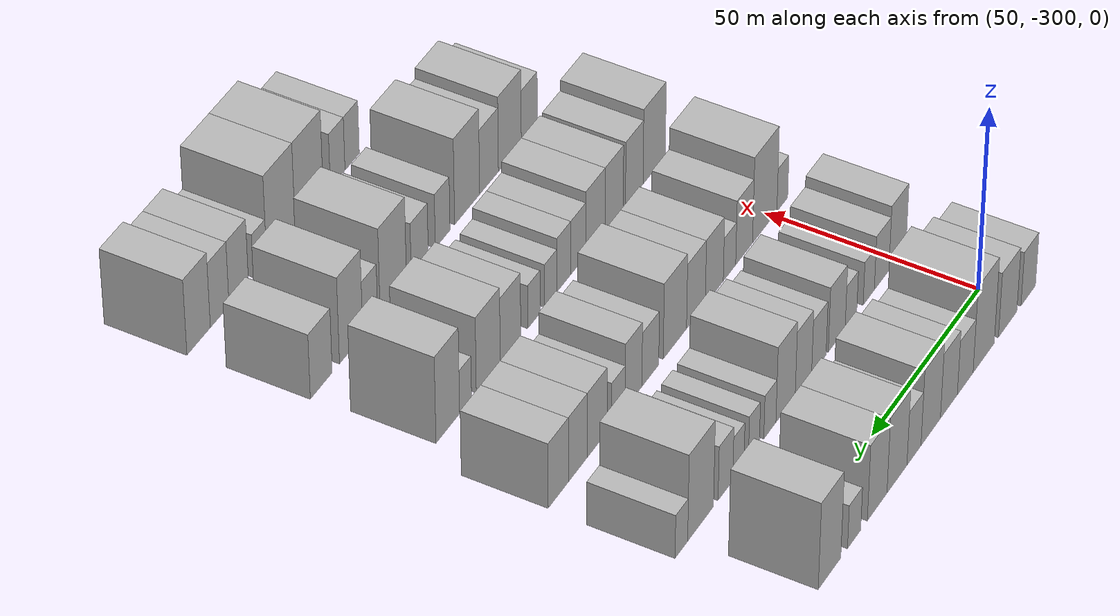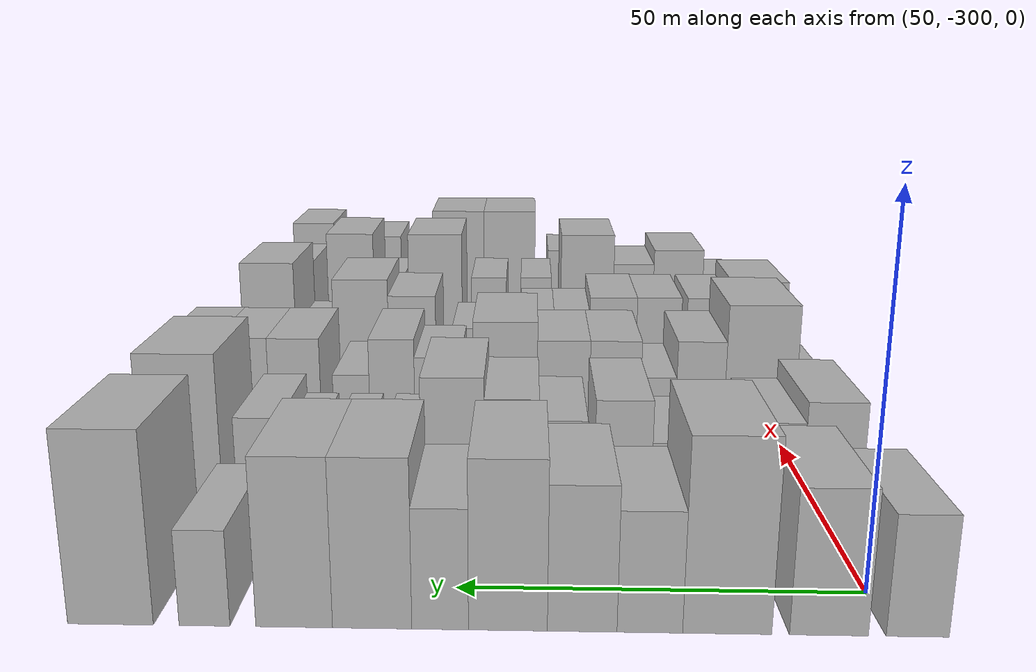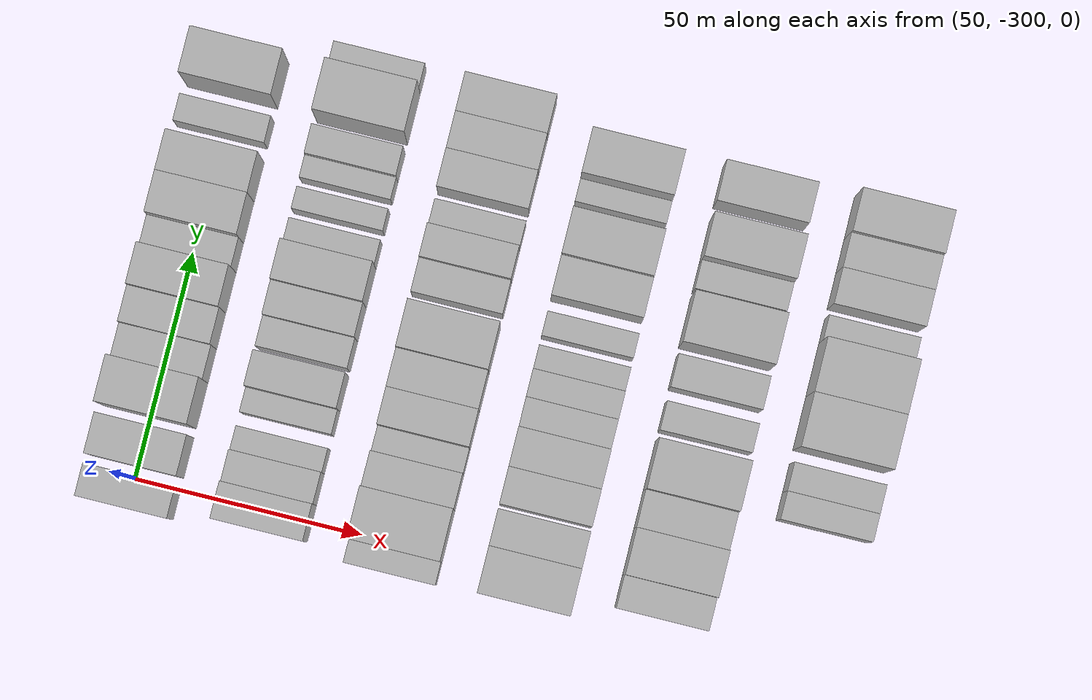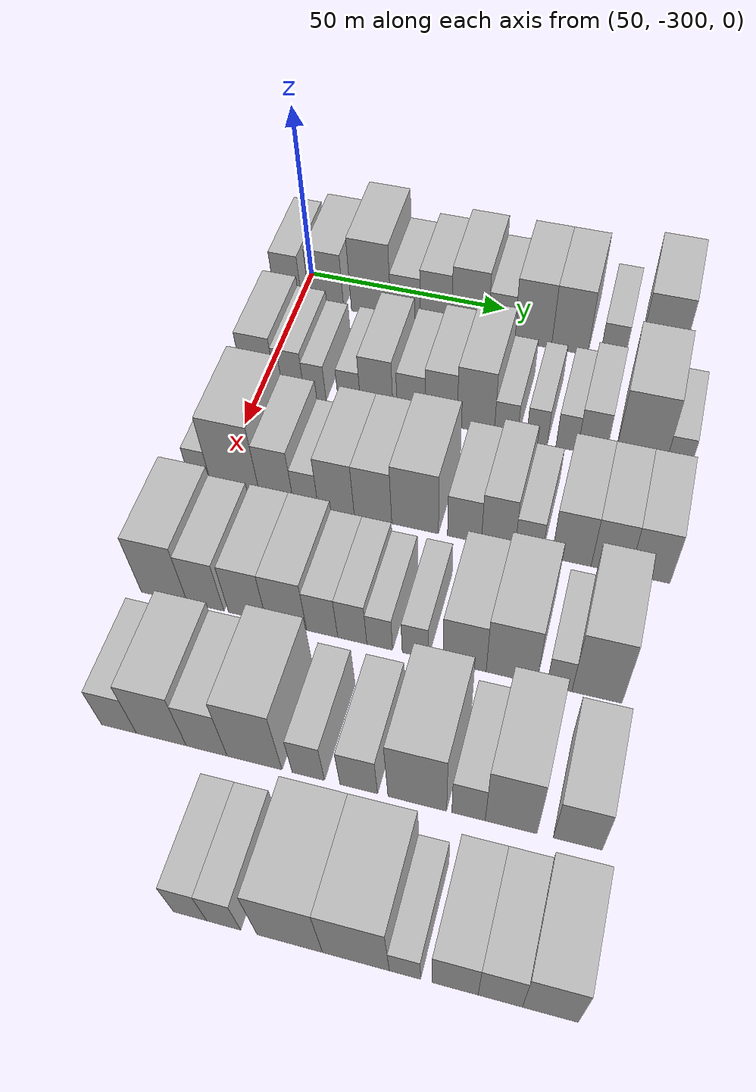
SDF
<sdf version="1.6">
 <world name="default">
  <model name="building_24">
   <static>1</static>
   <pose>50.0000 -303.0236 0 0.000000 0.000000 0.000000</pose>
   <link name="link">
    <pose>0 0 7.50 0 0 0</pose>
    <collision name="collision"><geometry><box><size>20.0000 7.0849 15.0000</size></box></geometry></collision>
    <visual name="visual">
     <cast_shadows>0</cast_shadows>
     <geometry><box><size>20.0000 7.0849 15.0000</size></box></geometry>
     <material>
      <script>
       <uri>model://HANNAS_wall/materials/scripts</uri>
       <uri>model://HANNAS_wall/materials/textures</uri>
       <name>vrc/HANNAS_wall</name>
      </script>
     </material>
    </visual>
   </link>
  </model>
  <model name="building_25">
   <static>1</static>
   <pose>50.0000 -293.0301 0 0.000000 0.000000 0.000000</pose>
   <link name="link">
    <pose>0 0 9.00 0 0 0</pose>
    <collision name="collision"><geometry><box><size>20.0000 8.9020 18.0000</size></box></geometry></collision>
    <visual name="visual">
     <cast_shadows>0</cast_shadows>
     <geometry><box><size>20.0000 8.9020 18.0000</size></box></geometry>
     <material>
      <script>
       <uri>model://HANNAS_wall/materials/scripts</uri>
       <uri>model://HANNAS_wall/materials/textures</uri>
       <name>vrc/HANNAS_wall</name>
      </script>
     </material>
    </visual>
   </link>
  </model>
  <model name="building_26">
   <static>1</static>
   <pose>50.0000 -281.5239 0 0.000000 0.000000 0.000000</pose>
   <link name="link">
    <pose>0 0 12.00 0 0 0</pose>
    <collision name="collision"><geometry><box><size>20.0000 10.1105 24.0000</size></box></geometry></collision>
    <visual name="visual">
     <cast_shadows>0</cast_shadows>
     <geometry><box><size>20.0000 10.1105 24.0000</size></box></geometry>
     <material>
      <script>
       <uri>model://HANNAS_wall/materials/scripts</uri>
       <uri>model://HANNAS_wall/materials/textures</uri>
       <name>vrc/HANNAS_wall</name>
      </script>
     </material>
    </visual>
   </link>
  </model>
  <model name="building_27">
   <static>1</static>
   <pose>50.0000 -272.7384 0 0.000000 0.000000 0.000000</pose>
   <link name="link">
    <pose>0 0 7.50 0 0 0</pose>
    <collision name="collision"><geometry><box><size>20.0000 7.4606 15.0000</size></box></geometry></collision>
    <visual name="visual">
     <cast_shadows>0</cast_shadows>
     <geometry><box><size>20.0000 7.4606 15.0000</size></box></geometry>
     <material>
      <script>
       <uri>model://HANNAS_wall/materials/scripts</uri>
       <uri>model://HANNAS_wall/materials/textures</uri>
       <name>vrc/HANNAS_wall</name>
      </script>
     </material>
    </visual>
   </link>
  </model>
  <model name="building_28">
   <static>1</static>
   <pose>50.0000 -265.0333 0 0.000000 0.000000 0.000000</pose>
   <link name="link">
    <pose>0 0 9.00 0 0 0</pose>
    <collision name="collision"><geometry><box><size>20.0000 7.9496 18.0000</size></box></geometry></collision>
    <visual name="visual">
     <cast_shadows>0</cast_shadows>
     <geometry><box><size>20.0000 7.9496 18.0000</size></box></geometry>
     <material>
      <script>
       <uri>model://HANNAS_wall/materials/scripts</uri>
       <uri>model://HANNAS_wall/materials/textures</uri>
       <name>vrc/HANNAS_wall</name>
      </script>
     </material>
    </visual>
   </link>
  </model>
  <model name="building_29">
   <static>1</static>
   <pose>50.0000 -256.5383 0 0.000000 0.000000 0.000000</pose>
   <link name="link">
    <pose>0 0 10.50 0 0 0</pose>
    <collision name="collision"><geometry><box><size>20.0000 9.0404 21.0000</size></box></geometry></collision>
    <visual name="visual">
     <cast_shadows>0</cast_shadows>
     <geometry><box><size>20.0000 9.0404 21.0000</size></box></geometry>
     <material>
      <script>
       <uri>model://HANNAS_wall/materials/scripts</uri>
       <uri>model://HANNAS_wall/materials/textures</uri>
       <name>vrc/HANNAS_wall</name>
      </script>
     </material>
    </visual>
   </link>
  </model>
  <model name="building_30">
   <static>1</static>
   <pose>50.0000 -248.7685 0 0.000000 0.000000 0.000000</pose>
   <link name="link">
    <pose>0 0 7.50 0 0 0</pose>
    <collision name="collision"><geometry><box><size>20.0000 6.4992 15.0000</size></box></geometry></collision>
    <visual name="visual">
     <cast_shadows>0</cast_shadows>
     <geometry><box><size>20.0000 6.4992 15.0000</size></box></geometry>
     <material>
      <script>
       <uri>model://HANNAS_wall/materials/scripts</uri>
       <uri>model://HANNAS_wall/materials/textures</uri>
       <name>vrc/HANNAS_wall</name>
      </script>
     </material>
    </visual>
   </link>
  </model>
  <model name="building_31">
   <static>1</static>
   <pose>50.0000 -240.9469 0 0.000000 0.000000 0.000000</pose>
   <link name="link">
    <pose>0 0 10.50 0 0 0</pose>
    <collision name="collision"><geometry><box><size>20.0000 9.1441 21.0000</size></box></geometry></collision>
    <visual name="visual">
     <cast_shadows>0</cast_shadows>
     <geometry><box><size>20.0000 9.1441 21.0000</size></box></geometry>
     <material>
      <script>
       <uri>model://HANNAS_wall/materials/scripts</uri>
       <uri>model://HANNAS_wall/materials/textures</uri>
       <name>vrc/HANNAS_wall</name>
      </script>
     </material>
    </visual>
   </link>
  </model>
  <model name="building_32">
   <static>1</static>
   <pose>50.0000 -231.9362 0 0.000000 0.000000 0.000000</pose>
   <link name="link">
    <pose>0 0 10.50 0 0 0</pose>
    <collision name="collision"><geometry><box><size>20.0000 8.8774 21.0000</size></box></geometry></collision>
    <visual name="visual">
     <cast_shadows>0</cast_shadows>
     <geometry><box><size>20.0000 8.8774 21.0000</size></box></geometry>
     <material>
      <script>
       <uri>model://HANNAS_wall/materials/scripts</uri>
       <uri>model://HANNAS_wall/materials/textures</uri>
       <name>vrc/HANNAS_wall</name>
      </script>
     </material>
    </visual>
   </link>
  </model>
  <model name="building_33">
   <static>1</static>
   <pose>50.0000 -221.5385 0 0.000000 0.000000 0.000000</pose>
   <link name="link">
    <pose>0 0 6.00 0 0 0</pose>
    <collision name="collision"><geometry><box><size>20.0000 5.9180 12.0000</size></box></geometry></collision>
    <visual name="visual">
     <cast_shadows>0</cast_shadows>
     <geometry><box><size>20.0000 5.9180 12.0000</size></box></geometry>
     <material>
      <script>
       <uri>model://HANNAS_wall/materials/scripts</uri>
       <uri>model://HANNAS_wall/materials/textures</uri>
       <name>vrc/HANNAS_wall</name>
      </script>
     </material>
    </visual>
   </link>
  </model>
  <model name="building_34">
   <static>1</static>
   <pose>50.0000 -210.5738 0 0.000000 0.000000 0.000000</pose>
   <link name="link">
    <pose>0 0 12.00 0 0 0</pose>
    <collision name="collision"><geometry><box><size>20.0000 10.0115 24.0000</size></box></geometry></collision>
    <visual name="visual">
     <cast_shadows>0</cast_shadows>
     <geometry><box><size>20.0000 10.0115 24.0000</size></box></geometry>
     <material>
      <script>
       <uri>model://HANNAS_wall/materials/scripts</uri>
       <uri>model://HANNAS_wall/materials/textures</uri>
       <name>vrc/HANNAS_wall</name>
      </script>
     </material>
    </visual>
   </link>
  </model>
  <model name="building_127">
   <static>1</static>
   <pose>79.0000 -300.2888 0 0.000000 0.000000 0.000000</pose>
   <link name="link">
    <pose>0 0 9.00 0 0 0</pose>
    <collision name="collision"><geometry><box><size>20.0000 8.0927 18.0000</size></box></geometry></collision>
    <visual name="visual">
     <cast_shadows>0</cast_shadows>
     <geometry><box><size>20.0000 8.0927 18.0000</size></box></geometry>
     <material>
      <script>
       <uri>model://HANNAS_wall/materials/scripts</uri>
       <uri>model://HANNAS_wall/materials/textures</uri>
       <name>vrc/HANNAS_wall</name>
      </script>
     </material>
    </visual>
   </link>
  </model>
  <model name="building_128">
   <static>1</static>
   <pose>79.0000 -292.7848 0 0.000000 0.000000 0.000000</pose>
   <link name="link">
    <pose>0 0 7.50 0 0 0</pose>
    <collision name="collision"><geometry><box><size>20.0000 6.9154 15.0000</size></box></geometry></collision>
    <visual name="visual">
     <cast_shadows>0</cast_shadows>
     <geometry><box><size>20.0000 6.9154 15.0000</size></box></geometry>
     <material>
      <script>
       <uri>model://HANNAS_wall/materials/scripts</uri>
       <uri>model://HANNAS_wall/materials/textures</uri>
       <name>vrc/HANNAS_wall</name>
      </script>
     </material>
    </visual>
   </link>
  </model>
  <model name="building_129">
   <static>1</static>
   <pose>79.0000 -286.7046 0 0.000000 0.000000 0.000000</pose>
   <link name="link">
    <pose>0 0 6.00 0 0 0</pose>
    <collision name="collision"><geometry><box><size>20.0000 5.2450 12.0000</size></box></geometry></collision>
    <visual name="visual">
     <cast_shadows>0</cast_shadows>
     <geometry><box><size>20.0000 5.2450 12.0000</size></box></geometry>
     <material>
      <script>
       <uri>model://HANNAS_wall/materials/scripts</uri>
       <uri>model://HANNAS_wall/materials/textures</uri>
       <name>vrc/HANNAS_wall</name>
      </script>
     </material>
    </visual>
   </link>
  </model>
  <model name="building_130">
   <static>1</static>
   <pose>79.0000 -278.3812 0 0.000000 0.000000 0.000000</pose>
   <link name="link">
    <pose>0 0 6.00 0 0 0</pose>
    <collision name="collision"><geometry><box><size>20.0000 5.4017 12.0000</size></box></geometry></collision>
    <visual name="visual">
     <cast_shadows>0</cast_shadows>
     <geometry><box><size>20.0000 5.4017 12.0000</size></box></geometry>
     <material>
      <script>
       <uri>model://HANNAS_wall/materials/scripts</uri>
       <uri>model://HANNAS_wall/materials/textures</uri>
       <name>vrc/HANNAS_wall</name>
      </script>
     </material>
    </visual>
   </link>
  </model>
  <model name="building_131">
   <static>1</static>
   <pose>79.0000 -271.7816 0 0.000000 0.000000 0.000000</pose>
   <link name="link">
    <pose>0 0 9.00 0 0 0</pose>
    <collision name="collision"><geometry><box><size>20.0000 7.7976 18.0000</size></box></geometry></collision>
    <visual name="visual">
     <cast_shadows>0</cast_shadows>
     <geometry><box><size>20.0000 7.7976 18.0000</size></box></geometry>
     <material>
      <script>
       <uri>model://HANNAS_wall/materials/scripts</uri>
       <uri>model://HANNAS_wall/materials/textures</uri>
       <name>vrc/HANNAS_wall</name>
      </script>
     </material>
    </visual>
   </link>
  </model>
  <model name="building_132">
   <static>1</static>
   <pose>79.0000 -263.5590 0 0.000000 0.000000 0.000000</pose>
   <link name="link">
    <pose>0 0 7.50 0 0 0</pose>
    <collision name="collision"><geometry><box><size>20.0000 6.6475 15.0000</size></box></geometry></collision>
    <visual name="visual">
     <cast_shadows>0</cast_shadows>
     <geometry><box><size>20.0000 6.6475 15.0000</size></box></geometry>
     <material>
      <script>
       <uri>model://HANNAS_wall/materials/scripts</uri>
       <uri>model://HANNAS_wall/materials/textures</uri>
       <name>vrc/HANNAS_wall</name>
      </script>
     </material>
    </visual>
   </link>
  </model>
  <model name="building_133">
   <static>1</static>
   <pose>79.0000 -256.4970 0 0.000000 0.000000 0.000000</pose>
   <link name="link">
    <pose>0 0 9.00 0 0 0</pose>
    <collision name="collision"><geometry><box><size>20.0000 7.4766 18.0000</size></box></geometry></collision>
    <visual name="visual">
     <cast_shadows>0</cast_shadows>
     <geometry><box><size>20.0000 7.4766 18.0000</size></box></geometry>
     <material>
      <script>
       <uri>model://HANNAS_wall/materials/scripts</uri>
       <uri>model://HANNAS_wall/materials/textures</uri>
       <name>vrc/HANNAS_wall</name>
      </script>
     </material>
    </visual>
   </link>
  </model>
  <model name="building_134">
   <static>1</static>
   <pose>79.0000 -248.4132 0 0.000000 0.000000 0.000000</pose>
   <link name="link">
    <pose>0 0 10.50 0 0 0</pose>
    <collision name="collision"><geometry><box><size>20.0000 8.6910 21.0000</size></box></geometry></collision>
    <visual name="visual">
     <cast_shadows>0</cast_shadows>
     <geometry><box><size>20.0000 8.6910 21.0000</size></box></geometry>
     <material>
      <script>
       <uri>model://HANNAS_wall/materials/scripts</uri>
       <uri>model://HANNAS_wall/materials/textures</uri>
       <name>vrc/HANNAS_wall</name>
      </script>
     </material>
    </visual>
   </link>
  </model>
  <model name="building_135">
   <static>1</static>
   <pose>79.0000 -241.3528 0 0.000000 0.000000 0.000000</pose>
   <link name="link">
    <pose>0 0 6.00 0 0 0</pose>
    <collision name="collision"><geometry><box><size>20.0000 5.4298 12.0000</size></box></geometry></collision>
    <visual name="visual">
     <cast_shadows>0</cast_shadows>
     <geometry><box><size>20.0000 5.4298 12.0000</size></box></geometry>
     <material>
      <script>
       <uri>model://HANNAS_wall/materials/scripts</uri>
       <uri>model://HANNAS_wall/materials/textures</uri>
       <name>vrc/HANNAS_wall</name>
      </script>
     </material>
    </visual>
   </link>
  </model>
  <model name="building_136">
   <static>1</static>
   <pose>79.0000 -234.2105 0 0.000000 0.000000 0.000000</pose>
   <link name="link">
    <pose>0 0 6.00 0 0 0</pose>
    <collision name="collision"><geometry><box><size>20.0000 4.8548 12.0000</size></box></geometry></collision>
    <visual name="visual">
     <cast_shadows>0</cast_shadows>
     <geometry><box><size>20.0000 4.8548 12.0000</size></box></geometry>
     <material>
      <script>
       <uri>model://HANNAS_wall/materials/scripts</uri>
       <uri>model://HANNAS_wall/materials/textures</uri>
       <name>vrc/HANNAS_wall</name>
      </script>
     </material>
    </visual>
   </link>
  </model>
  <model name="building_137">
   <static>1</static>
   <pose>79.0000 -227.3194 0 0.000000 0.000000 0.000000</pose>
   <link name="link">
    <pose>0 0 6.00 0 0 0</pose>
    <collision name="collision"><geometry><box><size>20.0000 4.9274 12.0000</size></box></geometry></collision>
    <visual name="visual">
     <cast_shadows>0</cast_shadows>
     <geometry><box><size>20.0000 4.9274 12.0000</size></box></geometry>
     <material>
      <script>
       <uri>model://HANNAS_wall/materials/scripts</uri>
       <uri>model://HANNAS_wall/materials/textures</uri>
       <name>vrc/HANNAS_wall</name>
      </script>
     </material>
    </visual>
   </link>
  </model>
  <model name="building_138">
   <static>1</static>
   <pose>79.0000 -221.6364 0 0.000000 0.000000 0.000000</pose>
   <link name="link">
    <pose>0 0 7.50 0 0 0</pose>
    <collision name="collision"><geometry><box><size>20.0000 6.4387 15.0000</size></box></geometry></collision>
    <visual name="visual">
     <cast_shadows>0</cast_shadows>
     <geometry><box><size>20.0000 6.4387 15.0000</size></box></geometry>
     <material>
      <script>
       <uri>model://HANNAS_wall/materials/scripts</uri>
       <uri>model://HANNAS_wall/materials/textures</uri>
       <name>vrc/HANNAS_wall</name>
      </script>
     </material>
    </visual>
   </link>
  </model>
  <model name="building_139">
   <static>1</static>
   <pose>79.0000 -210.8170 0 0.000000 0.000000 0.000000</pose>
   <link name="link">
    <pose>0 0 12.00 0 0 0</pose>
    <collision name="collision"><geometry><box><size>20.0000 11.2001 24.0000</size></box></geometry></collision>
    <visual name="visual">
     <cast_shadows>0</cast_shadows>
     <geometry><box><size>20.0000 11.2001 24.0000</size></box></geometry>
     <material>
      <script>
       <uri>model://HANNAS_wall/materials/scripts</uri>
       <uri>model://HANNAS_wall/materials/textures</uri>
       <name>vrc/HANNAS_wall</name>
      </script>
     </material>
    </visual>
   </link>
  </model>
  <model name="building_140">
   <static>1</static>
   <pose>79.0000 -202.5101 0 0.000000 0.000000 0.000000</pose>
   <link name="link">
    <pose>0 0 6.00 0 0 0</pose>
    <collision name="collision"><geometry><box><size>20.0000 5.4137 12.0000</size></box></geometry></collision>
    <visual name="visual">
     <cast_shadows>0</cast_shadows>
     <geometry><box><size>20.0000 5.4137 12.0000</size></box></geometry>
     <material>
      <script>
       <uri>model://HANNAS_wall/materials/scripts</uri>
       <uri>model://HANNAS_wall/materials/textures</uri>
       <name>vrc/HANNAS_wall</name>
      </script>
     </material>
    </visual>
   </link>
  </model>
  <model name="building_246">
   <static>1</static>
   <pose>108.0000 -304.0217 0 0.000000 0.000000 0.000000</pose>
   <link name="link">
    <pose>0 0 6.00 0 0 0</pose>
    <collision name="collision"><geometry><box><size>20.0000 5.0376 12.0000</size></box></geometry></collision>
    <visual name="visual">
     <cast_shadows>0</cast_shadows>
     <geometry><box><size>20.0000 5.0376 12.0000</size></box></geometry>
     <material>
      <script>
       <uri>model://HANNAS_wall/materials/scripts</uri>
       <uri>model://HANNAS_wall/materials/textures</uri>
       <name>vrc/HANNAS_wall</name>
      </script>
     </material>
    </visual>
   </link>
  </model>
  <model name="building_247">
   <static>1</static>
   <pose>108.0000 -295.8504 0 0.000000 0.000000 0.000000</pose>
   <link name="link">
    <pose>0 0 12.00 0 0 0</pose>
    <collision name="collision"><geometry><box><size>20.0000 11.3051 24.0000</size></box></geometry></collision>
    <visual name="visual">
     <cast_shadows>0</cast_shadows>
     <geometry><box><size>20.0000 11.3051 24.0000</size></box></geometry>
     <material>
      <script>
       <uri>model://HANNAS_wall/materials/scripts</uri>
       <uri>model://HANNAS_wall/materials/textures</uri>
       <name>vrc/HANNAS_wall</name>
      </script>
     </material>
    </visual>
   </link>
  </model>
  <model name="building_248">
   <static>1</static>
   <pose>108.0000 -286.3301 0 0.000000 0.000000 0.000000</pose>
   <link name="link">
    <pose>0 0 9.00 0 0 0</pose>
    <collision name="collision"><geometry><box><size>20.0000 7.7356 18.0000</size></box></geometry></collision>
    <visual name="visual">
     <cast_shadows>0</cast_shadows>
     <geometry><box><size>20.0000 7.7356 18.0000</size></box></geometry>
     <material>
      <script>
       <uri>model://HANNAS_wall/materials/scripts</uri>
       <uri>model://HANNAS_wall/materials/textures</uri>
       <name>vrc/HANNAS_wall</name>
      </script>
     </material>
    </visual>
   </link>
  </model>
  <model name="building_249">
   <static>1</static>
   <pose>108.0000 -279.6296 0 0.000000 0.000000 0.000000</pose>
   <link name="link">
    <pose>0 0 6.00 0 0 0</pose>
    <collision name="collision"><geometry><box><size>20.0000 5.6654 12.0000</size></box></geometry></collision>
    <visual name="visual">
     <cast_shadows>0</cast_shadows>
     <geometry><box><size>20.0000 5.6654 12.0000</size></box></geometry>
     <material>
      <script>
       <uri>model://HANNAS_wall/materials/scripts</uri>
       <uri>model://HANNAS_wall/materials/textures</uri>
       <name>vrc/HANNAS_wall</name>
      </script>
     </material>
    </visual>
   </link>
  </model>
  <model name="building_250">
   <static>1</static>
   <pose>108.0000 -272.7114 0 0.000000 0.000000 0.000000</pose>
   <link name="link">
    <pose>0 0 9.00 0 0 0</pose>
    <collision name="collision"><geometry><box><size>20.0000 8.1709 18.0000</size></box></geometry></collision>
    <visual name="visual">
     <cast_shadows>0</cast_shadows>
     <geometry><box><size>20.0000 8.1709 18.0000</size></box></geometry>
     <material>
      <script>
       <uri>model://HANNAS_wall/materials/scripts</uri>
       <uri>model://HANNAS_wall/materials/textures</uri>
       <name>vrc/HANNAS_wall</name>
      </script>
     </material>
    </visual>
   </link>
  </model>
  <model name="building_251">
   <static>1</static>
   <pose>108.0000 -264.4173 0 0.000000 0.000000 0.000000</pose>
   <link name="link">
    <pose>0 0 9.00 0 0 0</pose>
    <collision name="collision"><geometry><box><size>20.0000 8.4173 18.0000</size></box></geometry></collision>
    <visual name="visual">
     <cast_shadows>0</cast_shadows>
     <geometry><box><size>20.0000 8.4173 18.0000</size></box></geometry>
     <material>
      <script>
       <uri>model://HANNAS_wall/materials/scripts</uri>
       <uri>model://HANNAS_wall/materials/textures</uri>
       <name>vrc/HANNAS_wall</name>
      </script>
     </material>
    </visual>
   </link>
  </model>
  <model name="building_252">
   <static>1</static>
   <pose>108.0000 -255.0312 0 0.000000 0.000000 0.000000</pose>
   <link name="link">
    <pose>0 0 10.50 0 0 0</pose>
    <collision name="collision"><geometry><box><size>20.0000 10.3549 21.0000</size></box></geometry></collision>
    <visual name="visual">
     <cast_shadows>0</cast_shadows>
     <geometry><box><size>20.0000 10.3549 21.0000</size></box></geometry>
     <material>
      <script>
       <uri>model://HANNAS_wall/materials/scripts</uri>
       <uri>model://HANNAS_wall/materials/textures</uri>
       <name>vrc/HANNAS_wall</name>
      </script>
     </material>
    </visual>
   </link>
  </model>
  <model name="building_253">
   <static>1</static>
   <pose>108.0000 -244.1491 0 0.000000 0.000000 0.000000</pose>
   <link name="link">
    <pose>0 0 7.50 0 0 0</pose>
    <collision name="collision"><geometry><box><size>20.0000 7.4094 15.0000</size></box></geometry></collision>
    <visual name="visual">
     <cast_shadows>0</cast_shadows>
     <geometry><box><size>20.0000 7.4094 15.0000</size></box></geometry>
     <material>
      <script>
       <uri>model://HANNAS_wall/materials/scripts</uri>
       <uri>model://HANNAS_wall/materials/textures</uri>
       <name>vrc/HANNAS_wall</name>
      </script>
     </material>
    </visual>
   </link>
  </model>
  <model name="building_254">
   <static>1</static>
   <pose>108.0000 -236.7948 0 0.000000 0.000000 0.000000</pose>
   <link name="link">
    <pose>0 0 9.00 0 0 0</pose>
    <collision name="collision"><geometry><box><size>20.0000 7.2991 18.0000</size></box></geometry></collision>
    <visual name="visual">
     <cast_shadows>0</cast_shadows>
     <geometry><box><size>20.0000 7.2991 18.0000</size></box></geometry>
     <material>
      <script>
       <uri>model://HANNAS_wall/materials/scripts</uri>
       <uri>model://HANNAS_wall/materials/textures</uri>
       <name>vrc/HANNAS_wall</name>
      </script>
     </material>
    </visual>
   </link>
  </model>
  <model name="building_255">
   <static>1</static>
   <pose>108.0000 -230.1952 0 0.000000 0.000000 0.000000</pose>
   <link name="link">
    <pose>0 0 6.00 0 0 0</pose>
    <collision name="collision"><geometry><box><size>20.0000 5.9002 12.0000</size></box></geometry></collision>
    <visual name="visual">
     <cast_shadows>0</cast_shadows>
     <geometry><box><size>20.0000 5.9002 12.0000</size></box></geometry>
     <material>
      <script>
       <uri>model://HANNAS_wall/materials/scripts</uri>
       <uri>model://HANNAS_wall/materials/textures</uri>
       <name>vrc/HANNAS_wall</name>
      </script>
     </material>
    </visual>
   </link>
  </model>
  <model name="building_256">
   <static>1</static>
   <pose>108.0000 -221.0331 0 0.000000 0.000000 0.000000</pose>
   <link name="link">
    <pose>0 0 9.00 0 0 0</pose>
    <collision name="collision"><geometry><box><size>20.0000 8.4238 18.0000</size></box></geometry></collision>
    <visual name="visual">
     <cast_shadows>0</cast_shadows>
     <geometry><box><size>20.0000 8.4238 18.0000</size></box></geometry>
     <material>
      <script>
       <uri>model://HANNAS_wall/materials/scripts</uri>
       <uri>model://HANNAS_wall/materials/textures</uri>
       <name>vrc/HANNAS_wall</name>
      </script>
     </material>
    </visual>
   </link>
  </model>
  <model name="building_257">
   <static>1</static>
   <pose>108.0000 -212.7875 0 0.000000 0.000000 0.000000</pose>
   <link name="link">
    <pose>0 0 9.00 0 0 0</pose>
    <collision name="collision"><geometry><box><size>20.0000 8.0674 18.0000</size></box></geometry></collision>
    <visual name="visual">
     <cast_shadows>0</cast_shadows>
     <geometry><box><size>20.0000 8.0674 18.0000</size></box></geometry>
     <material>
      <script>
       <uri>model://HANNAS_wall/materials/scripts</uri>
       <uri>model://HANNAS_wall/materials/textures</uri>
       <name>vrc/HANNAS_wall</name>
      </script>
     </material>
    </visual>
   </link>
  </model>
  <model name="building_258">
   <static>1</static>
   <pose>108.0000 -204.4900 0 0.000000 0.000000 0.000000</pose>
   <link name="link">
    <pose>0 0 9.00 0 0 0</pose>
    <collision name="collision"><geometry><box><size>20.0000 8.5276 18.0000</size></box></geometry></collision>
    <visual name="visual">
     <cast_shadows>0</cast_shadows>
     <geometry><box><size>20.0000 8.5276 18.0000</size></box></geometry>
     <material>
      <script>
       <uri>model://HANNAS_wall/materials/scripts</uri>
       <uri>model://HANNAS_wall/materials/textures</uri>
       <name>vrc/HANNAS_wall</name>
      </script>
     </material>
    </visual>
   </link>
  </model>
  <model name="building_367">
   <static>1</static>
   <pose>137.0000 -300.8436 0 0.000000 0.000000 0.000000</pose>
   <link name="link">
    <pose>0 0 10.50 0 0 0</pose>
    <collision name="collision"><geometry><box><size>20.0000 10.1532 21.0000</size></box></geometry></collision>
    <visual name="visual">
     <cast_shadows>0</cast_shadows>
     <geometry><box><size>20.0000 10.1532 21.0000</size></box></geometry>
     <material>
      <script>
       <uri>model://HANNAS_wall/materials/scripts</uri>
       <uri>model://HANNAS_wall/materials/textures</uri>
       <name>vrc/HANNAS_wall</name>
      </script>
     </material>
    </visual>
   </link>
  </model>
  <model name="building_368">
   <static>1</static>
   <pose>137.0000 -291.7768 0 0.000000 0.000000 0.000000</pose>
   <link name="link">
    <pose>0 0 9.00 0 0 0</pose>
    <collision name="collision"><geometry><box><size>20.0000 7.9803 18.0000</size></box></geometry></collision>
    <visual name="visual">
     <cast_shadows>0</cast_shadows>
     <geometry><box><size>20.0000 7.9803 18.0000</size></box></geometry>
     <material>
      <script>
       <uri>model://HANNAS_wall/materials/scripts</uri>
       <uri>model://HANNAS_wall/materials/textures</uri>
       <name>vrc/HANNAS_wall</name>
      </script>
     </material>
    </visual>
   </link>
  </model>
  <model name="building_369">
   <static>1</static>
   <pose>137.0000 -282.7168 0 0.000000 0.000000 0.000000</pose>
   <link name="link">
    <pose>0 0 9.00 0 0 0</pose>
    <collision name="collision"><geometry><box><size>20.0000 8.1398 18.0000</size></box></geometry></collision>
    <visual name="visual">
     <cast_shadows>0</cast_shadows>
     <geometry><box><size>20.0000 8.1398 18.0000</size></box></geometry>
     <material>
      <script>
       <uri>model://HANNAS_wall/materials/scripts</uri>
       <uri>model://HANNAS_wall/materials/textures</uri>
       <name>vrc/HANNAS_wall</name>
      </script>
     </material>
    </visual>
   </link>
  </model>
  <model name="building_370">
   <static>1</static>
   <pose>137.0000 -274.3442 0 0.000000 0.000000 0.000000</pose>
   <link name="link">
    <pose>0 0 9.00 0 0 0</pose>
    <collision name="collision"><geometry><box><size>20.0000 8.6054 18.0000</size></box></geometry></collision>
    <visual name="visual">
     <cast_shadows>0</cast_shadows>
     <geometry><box><size>20.0000 8.6054 18.0000</size></box></geometry>
     <material>
      <script>
       <uri>model://HANNAS_wall/materials/scripts</uri>
       <uri>model://HANNAS_wall/materials/textures</uri>
       <name>vrc/HANNAS_wall</name>
      </script>
     </material>
    </visual>
   </link>
  </model>
  <model name="building_371">
   <static>1</static>
   <pose>137.0000 -266.7620 0 0.000000 0.000000 0.000000</pose>
   <link name="link">
    <pose>0 0 7.50 0 0 0</pose>
    <collision name="collision"><geometry><box><size>20.0000 6.5590 15.0000</size></box></geometry></collision>
    <visual name="visual">
     <cast_shadows>0</cast_shadows>
     <geometry><box><size>20.0000 6.5590 15.0000</size></box></geometry>
     <material>
      <script>
       <uri>model://HANNAS_wall/materials/scripts</uri>
       <uri>model://HANNAS_wall/materials/textures</uri>
       <name>vrc/HANNAS_wall</name>
      </script>
     </material>
    </visual>
   </link>
  </model>
  <model name="building_372">
   <static>1</static>
   <pose>137.0000 -260.4277 0 0.000000 0.000000 0.000000</pose>
   <link name="link">
    <pose>0 0 7.50 0 0 0</pose>
    <collision name="collision"><geometry><box><size>20.0000 6.1097 15.0000</size></box></geometry></collision>
    <visual name="visual">
     <cast_shadows>0</cast_shadows>
     <geometry><box><size>20.0000 6.1097 15.0000</size></box></geometry>
     <material>
      <script>
       <uri>model://HANNAS_wall/materials/scripts</uri>
       <uri>model://HANNAS_wall/materials/textures</uri>
       <name>vrc/HANNAS_wall</name>
      </script>
     </material>
    </visual>
   </link>
  </model>
  <model name="building_373">
   <static>1</static>
   <pose>137.0000 -254.6978 0 0.000000 0.000000 0.000000</pose>
   <link name="link">
    <pose>0 0 6.00 0 0 0</pose>
    <collision name="collision"><geometry><box><size>20.0000 5.3500 12.0000</size></box></geometry></collision>
    <visual name="visual">
     <cast_shadows>0</cast_shadows>
     <geometry><box><size>20.0000 5.3500 12.0000</size></box></geometry>
     <material>
      <script>
       <uri>model://HANNAS_wall/materials/scripts</uri>
       <uri>model://HANNAS_wall/materials/textures</uri>
       <name>vrc/HANNAS_wall</name>
      </script>
     </material>
    </visual>
   </link>
  </model>
  <model name="building_374">
   <static>1</static>
   <pose>137.0000 -247.3343 0 0.000000 0.000000 0.000000</pose>
   <link name="link">
    <pose>0 0 6.00 0 0 0</pose>
    <collision name="collision"><geometry><box><size>20.0000 5.3770 12.0000</size></box></geometry></collision>
    <visual name="visual">
     <cast_shadows>0</cast_shadows>
     <geometry><box><size>20.0000 5.3770 12.0000</size></box></geometry>
     <material>
      <script>
       <uri>model://HANNAS_wall/materials/scripts</uri>
       <uri>model://HANNAS_wall/materials/textures</uri>
       <name>vrc/HANNAS_wall</name>
      </script>
     </material>
    </visual>
   </link>
  </model>
  <model name="building_375">
   <static>1</static>
   <pose>137.0000 -237.2544 0 0.000000 0.000000 0.000000</pose>
   <link name="link">
    <pose>0 0 9.00 0 0 0</pose>
    <collision name="collision"><geometry><box><size>20.0000 8.7828 18.0000</size></box></geometry></collision>
    <visual name="visual">
     <cast_shadows>0</cast_shadows>
     <geometry><box><size>20.0000 8.7828 18.0000</size></box></geometry>
     <material>
      <script>
       <uri>model://HANNAS_wall/materials/scripts</uri>
       <uri>model://HANNAS_wall/materials/textures</uri>
       <name>vrc/HANNAS_wall</name>
      </script>
     </material>
    </visual>
   </link>
  </model>
  <model name="building_376">
   <static>1</static>
   <pose>137.0000 -227.7738 0 0.000000 0.000000 0.000000</pose>
   <link name="link">
    <pose>0 0 10.50 0 0 0</pose>
    <collision name="collision"><geometry><box><size>20.0000 10.1784 21.0000</size></box></geometry></collision>
    <visual name="visual">
     <cast_shadows>0</cast_shadows>
     <geometry><box><size>20.0000 10.1784 21.0000</size></box></geometry>
     <material>
      <script>
       <uri>model://HANNAS_wall/materials/scripts</uri>
       <uri>model://HANNAS_wall/materials/textures</uri>
       <name>vrc/HANNAS_wall</name>
      </script>
     </material>
    </visual>
   </link>
  </model>
  <model name="building_377">
   <static>1</static>
   <pose>137.0000 -218.1821 0 0.000000 0.000000 0.000000</pose>
   <link name="link">
    <pose>0 0 6.00 0 0 0</pose>
    <collision name="collision"><geometry><box><size>20.0000 5.0050 12.0000</size></box></geometry></collision>
    <visual name="visual">
     <cast_shadows>0</cast_shadows>
     <geometry><box><size>20.0000 5.0050 12.0000</size></box></geometry>
     <material>
      <script>
       <uri>model://HANNAS_wall/materials/scripts</uri>
       <uri>model://HANNAS_wall/materials/textures</uri>
       <name>vrc/HANNAS_wall</name>
      </script>
     </material>
    </visual>
   </link>
  </model>
  <model name="building_378">
   <static>1</static>
   <pose>137.0000 -210.7491 0 0.000000 0.000000 0.000000</pose>
   <link name="link">
    <pose>0 0 12.00 0 0 0</pose>
    <collision name="collision"><geometry><box><size>20.0000 9.8611 24.0000</size></box></geometry></collision>
    <visual name="visual">
     <cast_shadows>0</cast_shadows>
     <geometry><box><size>20.0000 9.8611 24.0000</size></box></geometry>
     <material>
      <script>
       <uri>model://HANNAS_wall/materials/scripts</uri>
       <uri>model://HANNAS_wall/materials/textures</uri>
       <name>vrc/HANNAS_wall</name>
      </script>
     </material>
    </visual>
   </link>
  </model>
  <model name="building_485">
   <static>1</static>
   <pose>166.0000 -298.3677 0 0.000000 0.000000 0.000000</pose>
   <link name="link">
    <pose>0 0 7.50 0 0 0</pose>
    <collision name="collision"><geometry><box><size>20.0000 7.1884 15.0000</size></box></geometry></collision>
    <visual name="visual">
     <cast_shadows>0</cast_shadows>
     <geometry><box><size>20.0000 7.1884 15.0000</size></box></geometry>
     <material>
      <script>
       <uri>model://HANNAS_wall/materials/scripts</uri>
       <uri>model://HANNAS_wall/materials/textures</uri>
       <name>vrc/HANNAS_wall</name>
      </script>
     </material>
    </visual>
   </link>
  </model>
  <model name="building_486">
   <static>1</static>
   <pose>166.0000 -289.7006 0 0.000000 0.000000 0.000000</pose>
   <link name="link">
    <pose>0 0 10.50 0 0 0</pose>
    <collision name="collision"><geometry><box><size>20.0000 10.1456 21.0000</size></box></geometry></collision>
    <visual name="visual">
     <cast_shadows>0</cast_shadows>
     <geometry><box><size>20.0000 10.1456 21.0000</size></box></geometry>
     <material>
      <script>
       <uri>model://HANNAS_wall/materials/scripts</uri>
       <uri>model://HANNAS_wall/materials/textures</uri>
       <name>vrc/HANNAS_wall</name>
      </script>
     </material>
    </visual>
   </link>
  </model>
  <model name="building_487">
   <static>1</static>
   <pose>166.0000 -280.5143 0 0.000000 0.000000 0.000000</pose>
   <link name="link">
    <pose>0 0 9.00 0 0 0</pose>
    <collision name="collision"><geometry><box><size>20.0000 8.2270 18.0000</size></box></geometry></collision>
    <visual name="visual">
     <cast_shadows>0</cast_shadows>
     <geometry><box><size>20.0000 8.2270 18.0000</size></box></geometry>
     <material>
      <script>
       <uri>model://HANNAS_wall/materials/scripts</uri>
       <uri>model://HANNAS_wall/materials/textures</uri>
       <name>vrc/HANNAS_wall</name>
      </script>
     </material>
    </visual>
   </link>
  </model>
  <model name="building_488">
   <static>1</static>
   <pose>166.0000 -270.9509 0 0.000000 0.000000 0.000000</pose>
   <link name="link">
    <pose>0 0 12.00 0 0 0</pose>
    <collision name="collision"><geometry><box><size>20.0000 10.8998 24.0000</size></box></geometry></collision>
    <visual name="visual">
     <cast_shadows>0</cast_shadows>
     <geometry><box><size>20.0000 10.8998 24.0000</size></box></geometry>
     <material>
      <script>
       <uri>model://HANNAS_wall/materials/scripts</uri>
       <uri>model://HANNAS_wall/materials/textures</uri>
       <name>vrc/HANNAS_wall</name>
      </script>
     </material>
    </visual>
   </link>
  </model>
  <model name="building_489">
   <static>1</static>
   <pose>166.0000 -260.3365 0 0.000000 0.000000 0.000000</pose>
   <link name="link">
    <pose>0 0 7.50 0 0 0</pose>
    <collision name="collision"><geometry><box><size>20.0000 6.3289 15.0000</size></box></geometry></collision>
    <visual name="visual">
     <cast_shadows>0</cast_shadows>
     <geometry><box><size>20.0000 6.3289 15.0000</size></box></geometry>
     <material>
      <script>
       <uri>model://HANNAS_wall/materials/scripts</uri>
       <uri>model://HANNAS_wall/materials/textures</uri>
       <name>vrc/HANNAS_wall</name>
      </script>
     </material>
    </visual>
   </link>
  </model>
  <model name="building_490">
   <static>1</static>
   <pose>166.0000 -250.5352 0 0.000000 0.000000 0.000000</pose>
   <link name="link">
    <pose>0 0 7.50 0 0 0</pose>
    <collision name="collision"><geometry><box><size>20.0000 7.2737 15.0000</size></box></geometry></collision>
    <visual name="visual">
     <cast_shadows>0</cast_shadows>
     <geometry><box><size>20.0000 7.2737 15.0000</size></box></geometry>
     <material>
      <script>
       <uri>model://HANNAS_wall/materials/scripts</uri>
       <uri>model://HANNAS_wall/materials/textures</uri>
       <name>vrc/HANNAS_wall</name>
      </script>
     </material>
    </visual>
   </link>
  </model>
  <model name="building_491">
   <static>1</static>
   <pose>166.0000 -239.3289 0 0.000000 0.000000 0.000000</pose>
   <link name="link">
    <pose>0 0 12.00 0 0 0</pose>
    <collision name="collision"><geometry><box><size>20.0000 11.1390 24.0000</size></box></geometry></collision>
    <visual name="visual">
     <cast_shadows>0</cast_shadows>
     <geometry><box><size>20.0000 11.1390 24.0000</size></box></geometry>
     <material>
      <script>
       <uri>model://HANNAS_wall/materials/scripts</uri>
       <uri>model://HANNAS_wall/materials/textures</uri>
       <name>vrc/HANNAS_wall</name>
      </script>
     </material>
    </visual>
   </link>
  </model>
  <model name="building_492">
   <static>1</static>
   <pose>166.0000 -229.6327 0 0.000000 0.000000 0.000000</pose>
   <link name="link">
    <pose>0 0 7.50 0 0 0</pose>
    <collision name="collision"><geometry><box><size>20.0000 6.2535 15.0000</size></box></geometry></collision>
    <visual name="visual">
     <cast_shadows>0</cast_shadows>
     <geometry><box><size>20.0000 6.2535 15.0000</size></box></geometry>
     <material>
      <script>
       <uri>model://HANNAS_wall/materials/scripts</uri>
       <uri>model://HANNAS_wall/materials/textures</uri>
       <name>vrc/HANNAS_wall</name>
      </script>
     </material>
    </visual>
   </link>
  </model>
  <model name="building_493">
   <static>1</static>
   <pose>166.0000 -221.6899 0 0.000000 0.000000 0.000000</pose>
   <link name="link">
    <pose>0 0 12.00 0 0 0</pose>
    <collision name="collision"><geometry><box><size>20.0000 9.6322 24.0000</size></box></geometry></collision>
    <visual name="visual">
     <cast_shadows>0</cast_shadows>
     <geometry><box><size>20.0000 9.6322 24.0000</size></box></geometry>
     <material>
      <script>
       <uri>model://HANNAS_wall/materials/scripts</uri>
       <uri>model://HANNAS_wall/materials/textures</uri>
       <name>vrc/HANNAS_wall</name>
      </script>
     </material>
    </visual>
   </link>
  </model>
  <model name="building_494">
   <static>1</static>
   <pose>166.0000 -209.4030 0 0.000000 0.000000 0.000000</pose>
   <link name="link">
    <pose>0 0 9.00 0 0 0</pose>
    <collision name="collision"><geometry><box><size>20.0000 8.9416 18.0000</size></box></geometry></collision>
    <visual name="visual">
     <cast_shadows>0</cast_shadows>
     <geometry><box><size>20.0000 8.9416 18.0000</size></box></geometry>
     <material>
      <script>
       <uri>model://HANNAS_wall/materials/scripts</uri>
       <uri>model://HANNAS_wall/materials/textures</uri>
       <name>vrc/HANNAS_wall</name>
      </script>
     </material>
    </visual>
   </link>
  </model>
  <model name="building_600">
   <static>1</static>
   <pose>195.0000 -272.5371 0 0.000000 0.000000 0.000000</pose>
   <link name="link">
    <pose>0 0 7.50 0 0 0</pose>
    <collision name="collision"><geometry><box><size>20.0000 6.1435 15.0000</size></box></geometry></collision>
    <visual name="visual">
     <cast_shadows>0</cast_shadows>
     <geometry><box><size>20.0000 6.1435 15.0000</size></box></geometry>
     <material>
      <script>
       <uri>model://HANNAS_wall/materials/scripts</uri>
       <uri>model://HANNAS_wall/materials/textures</uri>
       <name>vrc/HANNAS_wall</name>
      </script>
     </material>
    </visual>
   </link>
  </model>
  <model name="building_601">
   <static>1</static>
   <pose>195.0000 -266.3466 0 0.000000 0.000000 0.000000</pose>
   <link name="link">
    <pose>0 0 7.50 0 0 0</pose>
    <collision name="collision"><geometry><box><size>20.0000 6.2376 15.0000</size></box></geometry></collision>
    <visual name="visual">
     <cast_shadows>0</cast_shadows>
     <geometry><box><size>20.0000 6.2376 15.0000</size></box></geometry>
     <material>
      <script>
       <uri>model://HANNAS_wall/materials/scripts</uri>
       <uri>model://HANNAS_wall/materials/textures</uri>
       <name>vrc/HANNAS_wall</name>
      </script>
     </material>
    </visual>
   </link>
  </model>
  <model name="building_602">
   <static>1</static>
   <pose>195.0000 -254.3239 0 0.000000 0.000000 0.000000</pose>
   <link name="link">
    <pose>0 0 12.00 0 0 0</pose>
    <collision name="collision"><geometry><box><size>20.0000 11.8078 24.0000</size></box></geometry></collision>
    <visual name="visual">
     <cast_shadows>0</cast_shadows>
     <geometry><box><size>20.0000 11.8078 24.0000</size></box></geometry>
     <material>
      <script>
       <uri>model://HANNAS_wall/materials/scripts</uri>
       <uri>model://HANNAS_wall/materials/textures</uri>
       <name>vrc/HANNAS_wall</name>
      </script>
     </material>
    </visual>
   </link>
  </model>
  <model name="building_603">
   <static>1</static>
   <pose>195.0000 -242.5052 0 0.000000 0.000000 0.000000</pose>
   <link name="link">
    <pose>0 0 12.00 0 0 0</pose>
    <collision name="collision"><geometry><box><size>20.0000 11.8296 24.0000</size></box></geometry></collision>
    <visual name="visual">
     <cast_shadows>0</cast_shadows>
     <geometry><box><size>20.0000 11.8296 24.0000</size></box></geometry>
     <material>
      <script>
       <uri>model://HANNAS_wall/materials/scripts</uri>
       <uri>model://HANNAS_wall/materials/textures</uri>
       <name>vrc/HANNAS_wall</name>
      </script>
     </material>
    </visual>
   </link>
  </model>
  <model name="building_604">
   <static>1</static>
   <pose>195.0000 -233.8466 0 0.000000 0.000000 0.000000</pose>
   <link name="link">
    <pose>0 0 6.00 0 0 0</pose>
    <collision name="collision"><geometry><box><size>20.0000 5.4876 12.0000</size></box></geometry></collision>
    <visual name="visual">
     <cast_shadows>0</cast_shadows>
     <geometry><box><size>20.0000 5.4876 12.0000</size></box></geometry>
     <material>
      <script>
       <uri>model://HANNAS_wall/materials/scripts</uri>
       <uri>model://HANNAS_wall/materials/textures</uri>
       <name>vrc/HANNAS_wall</name>
      </script>
     </material>
    </visual>
   </link>
  </model>
  <model name="building_605">
   <static>1</static>
   <pose>195.0000 -225.1335 0 0.000000 0.000000 0.000000</pose>
   <link name="link">
    <pose>0 0 9.00 0 0 0</pose>
    <collision name="collision"><geometry><box><size>20.0000 7.9385 18.0000</size></box></geometry></collision>
    <visual name="visual">
     <cast_shadows>0</cast_shadows>
     <geometry><box><size>20.0000 7.9385 18.0000</size></box></geometry>
     <material>
      <script>
       <uri>model://HANNAS_wall/materials/scripts</uri>
       <uri>model://HANNAS_wall/materials/textures</uri>
       <name>vrc/HANNAS_wall</name>
      </script>
     </material>
    </visual>
   </link>
  </model>
  <model name="building_606">
   <static>1</static>
   <pose>195.0000 -217.3811 0 0.000000 0.000000 0.000000</pose>
   <link name="link">
    <pose>0 0 9.00 0 0 0</pose>
    <collision name="collision"><geometry><box><size>20.0000 7.5664 18.0000</size></box></geometry></collision>
    <visual name="visual">
     <cast_shadows>0</cast_shadows>
     <geometry><box><size>20.0000 7.5664 18.0000</size></box></geometry>
     <material>
      <script>
       <uri>model://HANNAS_wall/materials/scripts</uri>
       <uri>model://HANNAS_wall/materials/textures</uri>
       <name>vrc/HANNAS_wall</name>
      </script>
     </material>
    </visual>
   </link>
  </model>
  <model name="building_607">
   <static>1</static>
   <pose>195.0000 -208.8847 0 0.000000 0.000000 0.000000</pose>
   <link name="link">
    <pose>0 0 10.50 0 0 0</pose>
    <collision name="collision"><geometry><box><size>20.0000 9.4264 21.0000</size></box></geometry></collision>
    <visual name="visual">
     <cast_shadows>0</cast_shadows>
     <geometry><box><size>20.0000 9.4264 21.0000</size></box></geometry>
     <material>
      <script>
       <uri>model://HANNAS_wall/materials/scripts</uri>
       <uri>model://HANNAS_wall/materials/textures</uri>
       <name>vrc/HANNAS_wall</name>
      </script>
     </material>
    </visual>
   </link>
  </model>
 </world>
</sdf>
